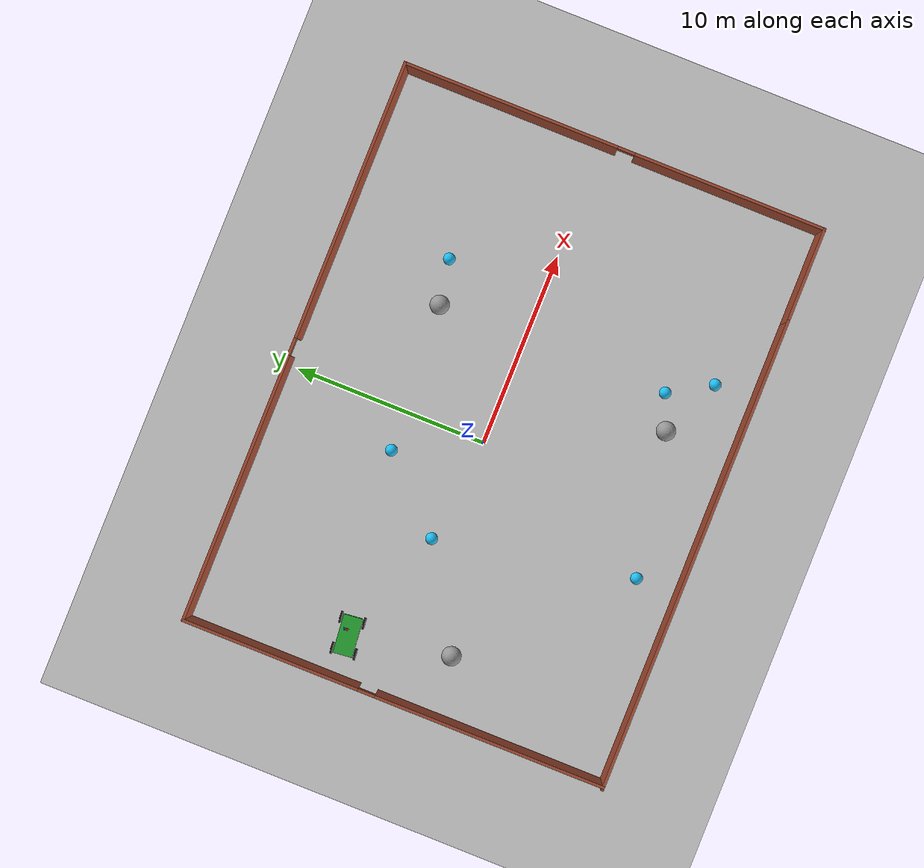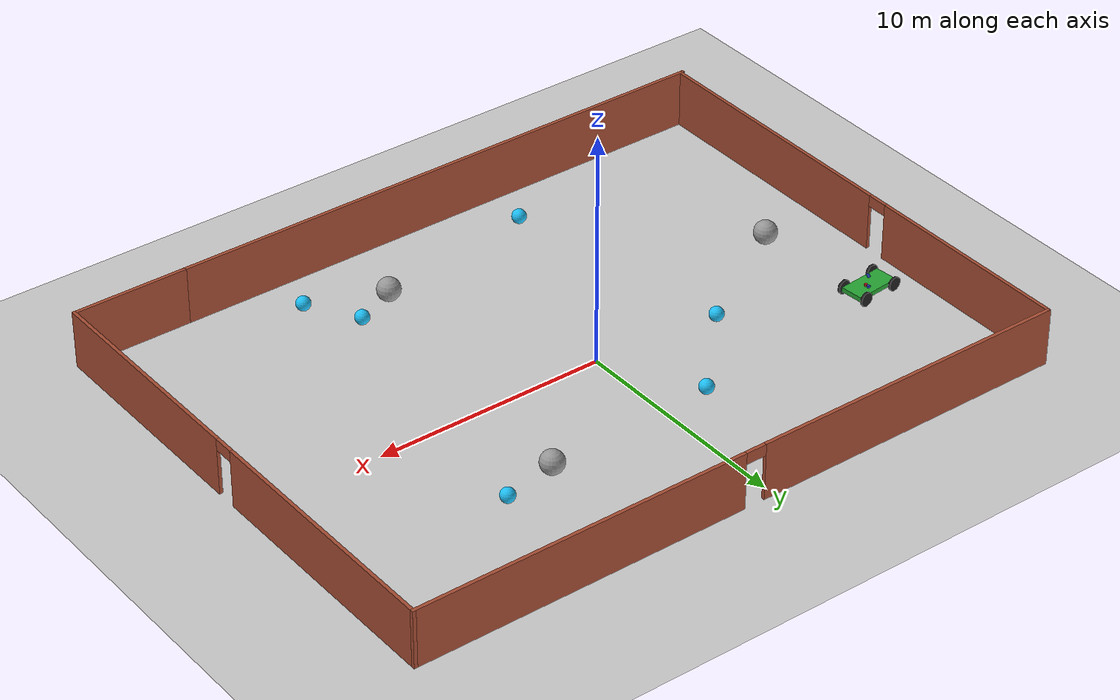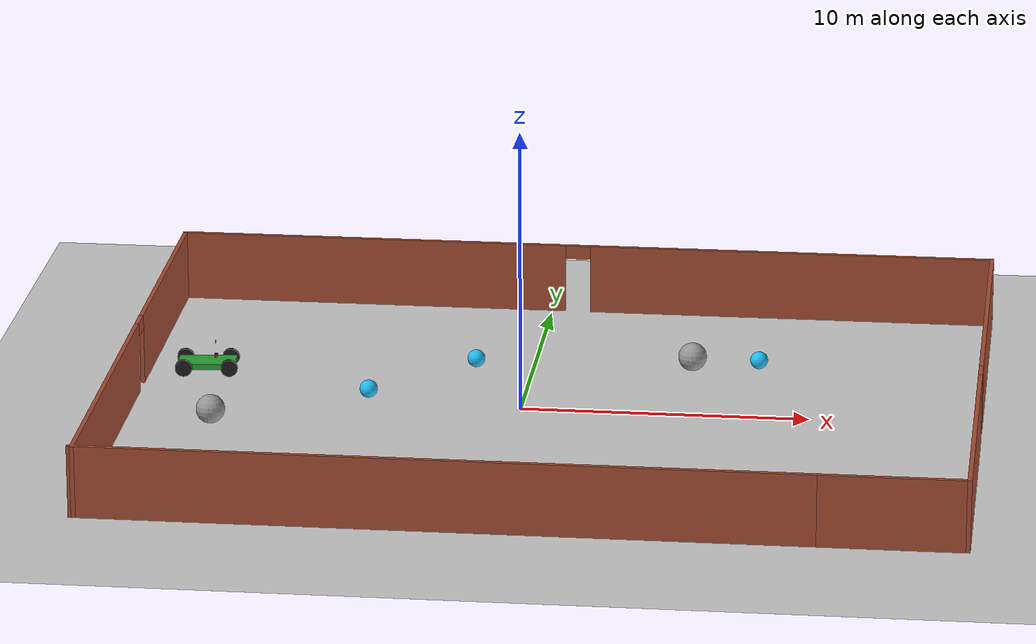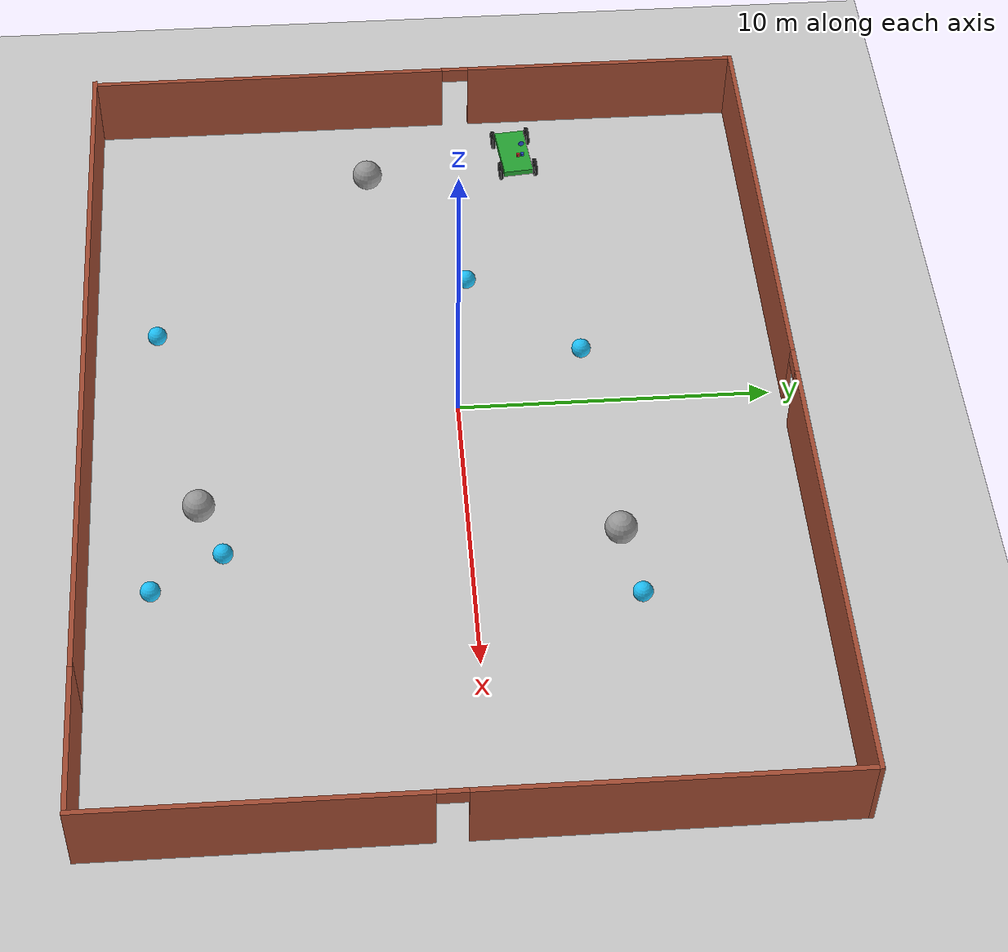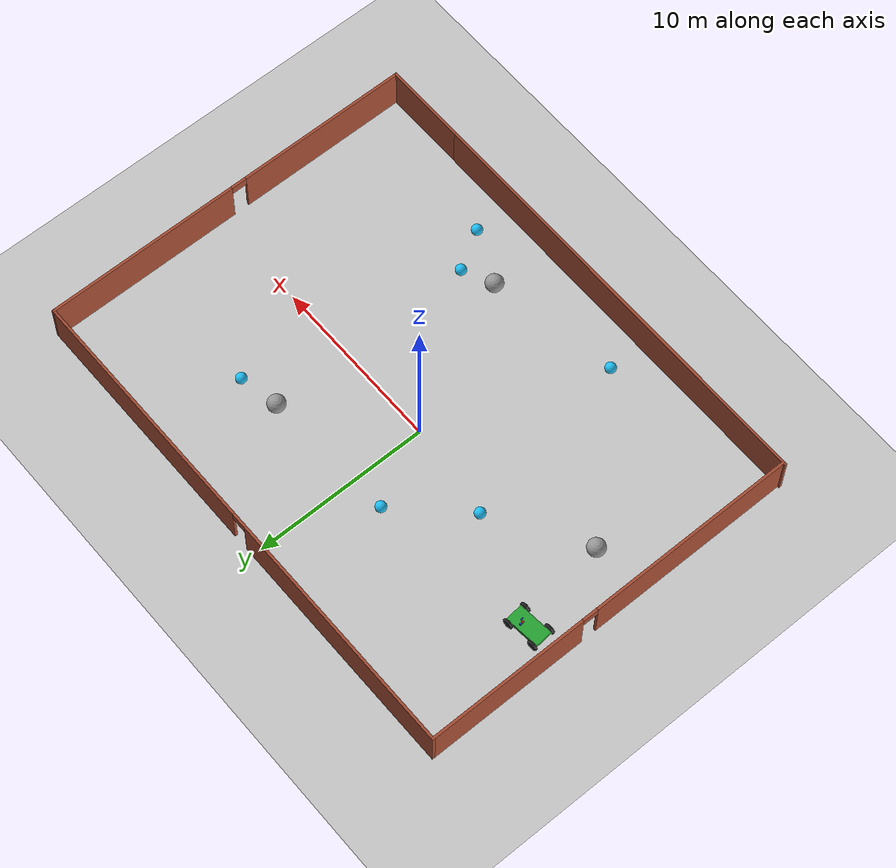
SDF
<sdf version="1.7">
 <world name="default">
  <light name="sun" type="directional">
   <pose>0 0 10 0 -0 0</pose>
   <diffuse>0.8 0.8 0.8 1</diffuse>
   <specular>0.2 0.2 0.2 1</specular>
   <attenuation>
    <range>1000</range>
    <constant>0.9</constant>
    <linear>0.01</linear>
    <quadratic>0.001</quadratic>
   </attenuation>
   <direction>-0.5 0.1 -0.9</direction>
   <spot><inner_angle>0</inner_angle><outer_angle>0</outer_angle><falloff>0</falloff></spot>
  </light>
  <model name="ground_plane">
   <static>1</static>
   <link name="link">
    <collision name="collision">
     <geometry><plane><normal>0 0 1</normal><size>100 100</size></plane></geometry>
     <surface>
      <contact><collide_bitmask>65535</collide_bitmask></contact>
      <friction><ode><mu>100</mu><mu2>50</mu2></ode></friction>
     </surface>
    </collision>
    <visual name="visual">
     <cast_shadows>0</cast_shadows>
     <geometry><plane><normal>0 0 1</normal><size>100 100</size></plane></geometry>
     <material>
      <script><uri>file://media/materials/scripts/gazebo.material</uri><name>Gazebo/Grey</name></script>
     </material>
    </visual>
   </link>
  </model>
  <gravity>0 0 -9.8</gravity>
  <magnetic_field>6e-06 2.3e-05 -4.2e-05</magnetic_field>
  <atmosphere type="adiabatic"/>
  <physics type="ode">
   <max_step_size>0.001</max_step_size>
   <real_time_factor>1</real_time_factor>
   <real_time_update_rate>1000</real_time_update_rate>
  </physics>
  <scene><ambient>0.4 0.4 0.4 1</ambient><background>0.7 0.7 0.7 1</background><shadows>1</shadows></scene>
  <audio><device>default</device></audio>
  <spherical_coordinates>
   <surface_model>EARTH_WGS84</surface_model>
   <latitude_deg>0</latitude_deg>
   <longitude_deg>0</longitude_deg>
   <elevation>0</elevation>
   <heading_deg>0</heading_deg>
  </spherical_coordinates>
  <model name="Untitled">
   <pose>1.1477 -0.611657 0 0 -0 0</pose>
   <link name="Wall_10">
    <pose>14.725 -0 0 0 -0 1.5708</pose>
    <visual name="Wall_10_Visual_0">
     <pose>-6.09601 0 1.25 0 -0 0</pose>
     <geometry><box><size>10.058 0.15 2.5</size></box></geometry>
     <material>
      <script><uri>file://media/materials/scripts/gazebo.material</uri><name>Gazebo/Bricks</name></script>
      <ambient>0.996078 0.47451 0.0196078 1</ambient>
     </material>
     <meta><layer>0</layer></meta>
    </visual>
    <collision name="Wall_10_Collision_0">
     <geometry><box><size>10.058 0.15 2.5</size></box></geometry>
     <pose>-6.09601 0 1.25 0 -0 0</pose>
    </collision>
    <visual name="Wall_10_Visual_1">
     <pose>5.47899 0 1.25 0 -0 0</pose>
     <geometry><box><size>11.292 0.15 2.5</size></box></geometry>
     <material>
      <script><uri>file://media/materials/scripts/gazebo.material</uri><name>Gazebo/Bricks</name></script>
      <ambient>0.996078 0.47451 0.0196078 1</ambient>
     </material>
     <meta><layer>0</layer></meta>
    </visual>
    <collision name="Wall_10_Collision_1">
     <geometry><box><size>11.292 0.15 2.5</size></box></geometry>
     <pose>5.47899 0 1.25 0 -0 0</pose>
    </collision>
    <visual name="Wall_10_Visual_2">
     <pose>-0.617012 0 2.25 0 -0 0</pose>
     <geometry><box><size>0.9 0.15 0.5</size></box></geometry>
     <material>
      <script><uri>file://media/materials/scripts/gazebo.material</uri><name>Gazebo/Bricks</name></script>
      <ambient>0.996078 0.47451 0.0196078 1</ambient>
     </material>
     <meta><layer>0</layer></meta>
    </visual>
    <collision name="Wall_10_Collision_2">
     <geometry><box><size>0.9 0.15 0.5</size></box></geometry>
     <pose>-0.617012 0 2.25 0 -0 0</pose>
    </collision>
   </link>
   <link name="Wall_11">
    <pose>0.049999 11.05 0 0 -0 3.14159</pose>
    <visual name="Wall_11_Visual_0">
     <pose>-7.46209 0 1.25 0 -0 0</pose>
     <geometry><box><size>14.5758 0.15 2.5</size></box></geometry>
     <material>
      <script><uri>file://media/materials/scripts/gazebo.material</uri><name>Gazebo/Bricks</name></script>
      <ambient>0.996078 0.47451 0.0196078 1</ambient>
     </material>
     <meta><layer>0</layer></meta>
    </visual>
    <collision name="Wall_11_Collision_0">
     <geometry><box><size>14.5758 0.15 2.5</size></box></geometry>
     <pose>-7.46209 0 1.25 0 -0 0</pose>
    </collision>
    <visual name="Wall_11_Visual_1">
     <pose>7.73791 0 1.25 0 -0 0</pose>
     <geometry><box><size>14.0242 0.15 2.5</size></box></geometry>
     <material>
      <script><uri>file://media/materials/scripts/gazebo.material</uri><name>Gazebo/Bricks</name></script>
      <ambient>0.996078 0.47451 0.0196078 1</ambient>
     </material>
     <meta><layer>0</layer></meta>
    </visual>
    <collision name="Wall_11_Collision_1">
     <geometry><box><size>14.0242 0.15 2.5</size></box></geometry>
     <pose>7.73791 0 1.25 0 -0 0</pose>
    </collision>
    <visual name="Wall_11_Visual_2">
     <pose>0.275822 0 2.25 0 -0 0</pose>
     <geometry><box><size>0.9 0.15 0.5</size></box></geometry>
     <material>
      <script><uri>file://media/materials/scripts/gazebo.material</uri><name>Gazebo/Bricks</name></script>
      <ambient>0.996078 0.47451 0.0196078 1</ambient>
     </material>
     <meta><layer>0</layer></meta>
    </visual>
    <collision name="Wall_11_Collision_2">
     <geometry><box><size>0.9 0.15 0.5</size></box></geometry>
     <pose>0.275822 0 2.25 0 -0 0</pose>
    </collision>
   </link>
   <link name="Wall_12">
    <pose>-14.625 -0 0 0 -0 -1.5708</pose>
    <visual name="Wall_12_Visual_0">
     <pose>-6.49554 0 1.25 0 -0 0</pose>
     <geometry><box><size>9.25892 0.15 2.5</size></box></geometry>
     <material>
      <script><uri>file://media/materials/scripts/gazebo.material</uri><name>Gazebo/Bricks</name></script>
      <ambient>0.996078 0.47451 0.0196078 1</ambient>
     </material>
     <meta><layer>0</layer></meta>
    </visual>
    <collision name="Wall_12_Collision_0">
     <geometry><box><size>9.25892 0.15 2.5</size></box></geometry>
     <pose>-6.49554 0 1.25 0 -0 0</pose>
    </collision>
    <visual name="Wall_12_Visual_1">
     <pose>5.07946 0 1.25 0 -0 0</pose>
     <geometry><box><size>12.0911 0.15 2.5</size></box></geometry>
     <material>
      <script><uri>file://media/materials/scripts/gazebo.material</uri><name>Gazebo/Bricks</name></script>
      <ambient>0.996078 0.47451 0.0196078 1</ambient>
     </material>
     <meta><layer>0</layer></meta>
    </visual>
    <collision name="Wall_12_Collision_1">
     <geometry><box><size>12.0911 0.15 2.5</size></box></geometry>
     <pose>5.07946 0 1.25 0 -0 0</pose>
    </collision>
    <visual name="Wall_12_Visual_2">
     <pose>-1.41608 0 2.25 0 -0 0</pose>
     <geometry><box><size>0.9 0.15 0.5</size></box></geometry>
     <material>
      <script><uri>file://media/materials/scripts/gazebo.material</uri><name>Gazebo/Bricks</name></script>
      <ambient>0.996078 0.47451 0.0196078 1</ambient>
     </material>
     <meta><layer>0</layer></meta>
    </visual>
    <collision name="Wall_12_Collision_2">
     <geometry><box><size>0.9 0.15 0.5</size></box></geometry>
     <pose>-1.41608 0 2.25 0 -0 0</pose>
    </collision>
   </link>
   <link name="Wall_8">
    <collision name="Wall_8_Collision">
     <geometry><box><size>24.75 0.15 2.5</size></box></geometry>
     <pose>0 0 1.25 0 -0 0</pose>
    </collision>
    <visual name="Wall_8_Visual">
     <pose>0 0 1.25 0 -0 0</pose>
     <geometry><box><size>24.75 0.15 2.5</size></box></geometry>
     <material>
      <script><uri>file://media/materials/scripts/gazebo.material</uri><name>Gazebo/Bricks</name></script>
      <ambient>0.996078 0.47451 0.0196078 1</ambient>
     </material>
     <meta><layer>0</layer></meta>
    </visual>
    <pose>-2.425 -11.05 0 0 -0 0</pose>
   </link>
   <link name="Wall_9">
    <collision name="Wall_9_Collision">
     <geometry><box><size>5 0.15 2.5</size></box></geometry>
     <pose>0 0 1.25 0 -0 0</pose>
    </collision>
    <visual name="Wall_9_Visual">
     <pose>0 0 1.25 0 -0 0</pose>
     <geometry><box><size>5 0.15 2.5</size></box></geometry>
     <material>
      <script><uri>file://media/materials/scripts/gazebo.material</uri><name>Gazebo/Bricks</name></script>
      <ambient>0.996078 0.47451 0.0196078 1</ambient>
     </material>
     <meta><layer>0</layer></meta>
    </visual>
    <pose>12.3 -11.05 0 0 -0 0</pose>
   </link>
   <static>1</static>
  </model>
  <light name="user_point_light_0" type="point">
   <pose>11.5641 7.01778 1 0 -0 0</pose>
   <diffuse>0.5 0.5 0.5 1</diffuse>
   <specular>0.1 0.1 0.1 1</specular>
   <attenuation>
    <range>20</range>
    <constant>0.5</constant>
    <linear>0.01</linear>
    <quadratic>0.001</quadratic>
   </attenuation>
   <cast_shadows>0</cast_shadows>
   <direction>0 0 -1</direction>
   <spot><inner_angle>0</inner_angle><outer_angle>0</outer_angle><falloff>0</falloff></spot>
  </light>
  <light name="user_point_light_2" type="point">
   <pose>12.0204 -0.999285 1 0 -0 0</pose>
   <diffuse>0.5 0.5 0.5 1</diffuse>
   <specular>0.1 0.1 0.1 1</specular>
   <attenuation>
    <range>20</range>
    <constant>0.5</constant>
    <linear>0.01</linear>
    <quadratic>0.001</quadratic>
   </attenuation>
   <cast_shadows>0</cast_shadows>
   <direction>0 0 -1</direction>
   <spot><inner_angle>0</inner_angle><outer_angle>0</outer_angle><falloff>0</falloff></spot>
  </light>
  <light name="user_point_light_4" type="point">
   <pose>4.68877 -1.10747 1 0 -0 0</pose>
   <diffuse>0.5 0.5 0.5 1</diffuse>
   <specular>0.1 0.1 0.1 1</specular>
   <attenuation>
    <range>20</range>
    <constant>0.5</constant>
    <linear>0.01</linear>
    <quadratic>0.001</quadratic>
   </attenuation>
   <cast_shadows>0</cast_shadows>
   <direction>0 0 -1</direction>
   <spot><inner_angle>0</inner_angle><outer_angle>0</outer_angle><falloff>0</falloff></spot>
  </light>
  <light name="user_point_light_10" type="point">
   <pose>-10.2773 -8.82366 1 0 -0 0</pose>
   <diffuse>0.5 0.5 0.5 1</diffuse>
   <specular>0.1 0.1 0.1 1</specular>
   <attenuation>
    <range>20</range>
    <constant>0.5</constant>
    <linear>0.01</linear>
    <quadratic>0.001</quadratic>
   </attenuation>
   <cast_shadows>0</cast_shadows>
   <direction>0 0 -1</direction>
   <spot><inner_angle>0</inner_angle><outer_angle>0</outer_angle><falloff>0</falloff></spot>
  </light>
  <light name="user_point_light_12" type="point">
   <pose>-9.95609 6.83833 1 0 -0 0</pose>
   <diffuse>0.5 0.5 0.5 1</diffuse>
   <specular>0.1 0.1 0.1 1</specular>
   <attenuation>
    <range>20</range>
    <constant>0.5</constant>
    <linear>0.01</linear>
    <quadratic>0.001</quadratic>
   </attenuation>
   <cast_shadows>0</cast_shadows>
   <direction>0 0 -1</direction>
   <spot><inner_angle>0</inner_angle><outer_angle>0</outer_angle><falloff>0</falloff></spot>
  </light>
  <light name="user_point_light_1" type="point">
   <pose>4.64044 0.124915 1 0 -0 0</pose>
   <diffuse>0.5 0.5 0.5 1</diffuse>
   <specular>0.1 0.1 0.1 1</specular>
   <attenuation>
    <range>20</range>
    <constant>0.5</constant>
    <linear>0.01</linear>
    <quadratic>0.001</quadratic>
   </attenuation>
   <cast_shadows>0</cast_shadows>
   <direction>0 0 -1</direction>
   <spot><inner_angle>0</inner_angle><outer_angle>0</outer_angle><falloff>0</falloff></spot>
  </light>
  <light name="user_point_light_3" type="point">
   <pose>-3.39722 7.57799 1 0 -0 0</pose>
   <diffuse>0.5 0.5 0.5 1</diffuse>
   <specular>0.1 0.1 0.1 1</specular>
   <attenuation>
    <range>20</range>
    <constant>0.5</constant>
    <linear>0.01</linear>
    <quadratic>0.001</quadratic>
   </attenuation>
   <cast_shadows>0</cast_shadows>
   <direction>0 0 -1</direction>
   <spot><inner_angle>0</inner_angle><outer_angle>0</outer_angle><falloff>0</falloff></spot>
  </light>
  <light name="user_point_light_5" type="point">
   <pose>-9.91744 7.91782 1 0 -0 0</pose>
   <diffuse>0.5 0.5 0.5 1</diffuse>
   <specular>0.1 0.1 0.1 1</specular>
   <attenuation>
    <range>20</range>
    <constant>0.5</constant>
    <linear>0.01</linear>
    <quadratic>0.001</quadratic>
   </attenuation>
   <cast_shadows>0</cast_shadows>
   <direction>0 0 -1</direction>
   <spot><inner_angle>0</inner_angle><outer_angle>0</outer_angle><falloff>0</falloff></spot>
  </light>
  <light name="user_point_light_6" type="point">
   <pose>-2.9827 0.280549 1 0 -0 0</pose>
   <diffuse>0.5 0.5 0.5 1</diffuse>
   <specular>0.1 0.1 0.1 1</specular>
   <attenuation>
    <range>20</range>
    <constant>0.5</constant>
    <linear>0.01</linear>
    <quadratic>0.001</quadratic>
   </attenuation>
   <cast_shadows>0</cast_shadows>
   <direction>0 0 -1</direction>
   <spot><inner_angle>0</inner_angle><outer_angle>0</outer_angle><falloff>0</falloff></spot>
  </light>
  <light name="user_point_light_7" type="point">
   <pose>-9.88332 0.758617 1 0 -0 0</pose>
   <diffuse>0.5 0.5 0.5 1</diffuse>
   <specular>0.1 0.1 0.1 1</specular>
   <attenuation>
    <range>20</range>
    <constant>0.5</constant>
    <linear>0.01</linear>
    <quadratic>0.001</quadratic>
   </attenuation>
   <cast_shadows>0</cast_shadows>
   <direction>0 0 -1</direction>
   <spot><inner_angle>0</inner_angle><outer_angle>0</outer_angle><falloff>0</falloff></spot>
  </light>
  <light name="user_point_light_8" type="point">
   <pose>-2.12485 -8.13437 1 0 -0 0</pose>
   <diffuse>0.5 0.5 0.5 1</diffuse>
   <specular>0.1 0.1 0.1 1</specular>
   <attenuation>
    <range>20</range>
    <constant>0.5</constant>
    <linear>0.01</linear>
    <quadratic>0.001</quadratic>
   </attenuation>
   <cast_shadows>0</cast_shadows>
   <direction>0 0 -1</direction>
   <spot><inner_angle>0</inner_angle><outer_angle>0</outer_angle><falloff>0</falloff></spot>
  </light>
  <light name="user_point_light_9" type="point">
   <pose>-9.10867 -7.90645 1 0 -0 0</pose>
   <diffuse>0.5 0.5 0.5 1</diffuse>
   <specular>0.1 0.1 0.1 1</specular>
   <attenuation>
    <range>20</range>
    <constant>0.5</constant>
    <linear>0.01</linear>
    <quadratic>0.001</quadratic>
   </attenuation>
   <cast_shadows>0</cast_shadows>
   <direction>0 0 -1</direction>
   <spot><inner_angle>0</inner_angle><outer_angle>0</outer_angle><falloff>0</falloff></spot>
  </light>
  <model name="aws_robomaker_residential_Ball_01">
   <link name="link">
    <inertial>
     <mass>0.12</mass>
     <inertia>
      <ixx>0.030752</ixx>
      <ixy>0</ixy>
      <ixz>0</ixz>
      <iyy>0.030752</iyy>
      <iyz>0</iyz>
      <izz>0.030752</izz>
     </inertia>
    </inertial>
    <collision name="collision">
     <geometry><sphere><radius>0.31</radius></sphere></geometry>
     <surface>
      <friction><ode><mu>0.85</mu><mu2>0.85</mu2></ode></friction>
      <contact><ode><kd>8500</kd><max_vel>5.1</max_vel></ode></contact>
     </surface>
    </collision>
    <visual name="visual">
     <geometry><sphere><radius>0.31</radius></sphere></geometry>
     <material><diffuse>0.12 0.76 0.97 1</diffuse><ambient>0.03 0.21 0.27 1</ambient></material>
     <meta><layer>1</layer></meta>
    </visual>
   </link>
   <pose>7.90822 4.99586 0.31 0 -0 0</pose>
  </model>
  <model name="aws_robomaker_residential_Ball_01_0">
   <link name="link">
    <inertial>
     <mass>0.12</mass>
     <inertia>
      <ixx>0.030752</ixx>
      <ixy>0</ixy>
      <ixz>0</ixz>
      <iyy>0.030752</iyy>
      <iyz>0</iyz>
      <izz>0.030752</izz>
     </inertia>
    </inertial>
    <collision name="collision">
     <geometry><sphere><radius>0.31</radius></sphere></geometry>
     <surface>
      <friction><ode><mu>0.85</mu><mu2>0.85</mu2></ode></friction>
      <contact><ode><kd>8500</kd><max_vel>5.1</max_vel></ode></contact>
     </surface>
    </collision>
    <visual name="visual">
     <geometry><sphere><radius>0.31</radius></sphere></geometry>
     <material><diffuse>0.12 0.76 0.97 1</diffuse><ambient>0.03 0.21 0.27 1</ambient></material>
     <meta><layer>1</layer></meta>
    </visual>
   </link>
   <pose>5.66786 -7.49369 0.31 0 -0 0</pose>
  </model>
  <model name="aws_robomaker_residential_Ball_01_1">
   <link name="link">
    <inertial>
     <mass>0.12</mass>
     <inertia>
      <ixx>0.030752</ixx>
      <ixy>0</ixy>
      <ixz>0</ixz>
      <iyy>0.030752</iyy>
      <iyz>0</iyz>
      <izz>0.030752</izz>
     </inertia>
    </inertial>
    <collision name="collision">
     <geometry><sphere><radius>0.31</radius></sphere></geometry>
     <surface>
      <friction><ode><mu>0.85</mu><mu2>0.85</mu2></ode></friction>
      <contact><ode><kd>8500</kd><max_vel>5.1</max_vel></ode></contact>
     </surface>
    </collision>
    <visual name="visual">
     <geometry><sphere><radius>0.31</radius></sphere></geometry>
     <material><diffuse>0.12 0.76 0.97 1</diffuse><ambient>0.03 0.21 0.27 1</ambient></material>
     <meta><layer>1</layer></meta>
    </visual>
   </link>
   <pose>-2.04036 4.14718 0.31 0 -0 0</pose>
  </model>
  <model name="car">
   <link name="chassis">
    <pose>0 0 0.3 0 -0 0</pose>
    <collision name="collision"><geometry><box><size>2 1 0.2</size></box></geometry></collision>
    <visual name="visual">
     <geometry><box><size>2 1 0.2</size></box></geometry>
     <material>
      <script><uri>file://media/materials/scripts/gazebo.material</uri><name>Gazebo/Green</name></script>
     </material>
    </visual>
    <inertial>
     <inertia><ixx>1</ixx><ixy>0</ixy><ixz>0</ixz><iyy>1</iyy><iyz>0</iyz><izz>1</izz></inertia>
     <mass>1</mass>
    </inertial>
   </link>
   <link name="front_left_wheel">
    <pose>0.8 0.6 0.3 -0 1.5707 1.5707</pose>
    <collision name="collision">
     <geometry><cylinder><radius>0.3</radius><length>0.1</length></cylinder></geometry>
    </collision>
    <visual name="visual">
     <geometry><cylinder><radius>0.3</radius><length>0.1</length></cylinder></geometry>
     <material>
      <script><uri>file://media/materials/scripts/gazebo.material</uri><name>Gazebo/Black</name></script>
     </material>
    </visual>
    <inertial>
     <inertia><ixx>1</ixx><ixy>0</ixy><ixz>0</ixz><iyy>1</iyy><iyz>0</iyz><izz>1</izz></inertia>
     <mass>1</mass>
    </inertial>
   </link>
   <link name="front_right_wheel">
    <pose>0.8 -0.6 0.3 -0 1.5707 1.5707</pose>
    <collision name="collision">
     <geometry><cylinder><radius>0.3</radius><length>0.1</length></cylinder></geometry>
    </collision>
    <visual name="visual">
     <geometry><cylinder><radius>0.3</radius><length>0.1</length></cylinder></geometry>
     <material>
      <script><uri>file://media/materials/scripts/gazebo.material</uri><name>Gazebo/Black</name></script>
     </material>
    </visual>
    <inertial>
     <inertia><ixx>1</ixx><ixy>0</ixy><ixz>0</ixz><iyy>1</iyy><iyz>0</iyz><izz>1</izz></inertia>
     <mass>1</mass>
    </inertial>
   </link>
   <link name="back_right_wheel">
    <pose>-0.8 -0.6 0.3 -0 1.5707 1.5707</pose>
    <collision name="collision">
     <geometry><cylinder><radius>0.3</radius><length>0.1</length></cylinder></geometry>
    </collision>
    <visual name="visual">
     <geometry><cylinder><radius>0.3</radius><length>0.1</length></cylinder></geometry>
     <material>
      <script><uri>file://media/materials/scripts/gazebo.material</uri><name>Gazebo/Black</name></script>
     </material>
    </visual>
    <inertial>
     <inertia><ixx>1</ixx><ixy>0</ixy><ixz>0</ixz><iyy>1</iyy><iyz>0</iyz><izz>1</izz></inertia>
     <mass>1</mass>
    </inertial>
   </link>
   <link name="back_left_wheel">
    <pose>-0.8 0.6 0.3 -0 1.5707 1.5707</pose>
    <collision name="collision">
     <geometry><cylinder><radius>0.3</radius><length>0.1</length></cylinder></geometry>
    </collision>
    <visual name="visual">
     <geometry><cylinder><radius>0.3</radius><length>0.1</length></cylinder></geometry>
     <material>
      <script><uri>file://media/materials/scripts/gazebo.material</uri><name>Gazebo/Black</name></script>
     </material>
    </visual>
    <inertial>
     <inertia><ixx>1</ixx><ixy>0</ixy><ixz>0</ixz><iyy>1</iyy><iyz>0</iyz><izz>1</izz></inertia>
     <mass>1</mass>
    </inertial>
   </link>
   <link name="gas_pedal">
    <pose>0.3 0.1 0.5 0 -0 0</pose>
    <collision name="collision"><geometry><box><size>0.1 0.1 0.1</size></box></geometry></collision>
    <visual name="visual">
     <geometry><box><size>0.1 0.1 0.1</size></box></geometry>
     <material>
      <script><uri>file://media/materials/scripts/gazebo.material</uri><name>Gazebo/Red</name></script>
     </material>
    </visual>
    <inertial>
     <inertia><ixx>1</ixx><ixy>0</ixy><ixz>0</ixz><iyy>1</iyy><iyz>0</iyz><izz>1</izz></inertia>
     <mass>1</mass>
    </inertial>
   </link>
   <link name="brake_pedal">
    <pose>0.3 0.25 0.5 0 -0 0</pose>
    <collision name="collision"><geometry><box><size>0.1 0.1 0.1</size></box></geometry></collision>
    <visual name="visual">
     <geometry><box><size>0.1 0.1 0.1</size></box></geometry>
     <material>
      <script><uri>file://media/materials/scripts/gazebo.material</uri><name>Gazebo/Blue</name></script>
     </material>
    </visual>
    <inertial>
     <inertia><ixx>1</ixx><ixy>0</ixy><ixz>0</ixz><iyy>1</iyy><iyz>0</iyz><izz>1</izz></inertia>
     <mass>1</mass>
    </inertial>
   </link>
   <link name="steering_wheel">
    <pose>0.3 0.2 1 0 1.5707 0</pose>
    <collision name="collision">
     <geometry><cylinder><radius>0.1</radius><length>0.01</length></cylinder></geometry>
    </collision>
    <visual name="visual">
     <geometry><cylinder><radius>0.1</radius><length>0.01</length></cylinder></geometry>
     <material>
      <script><uri>file://media/materials/scripts/gazebo.material</uri><name>Gazebo/Blue</name></script>
     </material>
    </visual>
    <inertial>
     <inertia><ixx>1</ixx><ixy>0</ixy><ixz>0</ixz><iyy>1</iyy><iyz>0</iyz><izz>1</izz></inertia>
     <mass>1</mass>
    </inertial>
   </link>
   <joint name="gas_joint" type="prismatic">
    <parent>chassis</parent>
    <child>gas_pedal</child>
    <axis>
     <xyz expressed_in="__model__">1 0 0</xyz>
     <limit><lower>0</lower><upper>0.2</upper></limit>
     <dynamics><spring_reference>0</spring_reference><spring_stiffness>0</spring_stiffness></dynamics>
    </axis>
   </joint>
   <joint name="brake_joint" type="prismatic">
    <parent>chassis</parent>
    <child>brake_pedal</child>
    <axis>
     <xyz expressed_in="__model__">1 0 0</xyz>
     <limit><lower>0</lower><upper>0.2</upper></limit>
     <dynamics><spring_reference>0</spring_reference><spring_stiffness>0</spring_stiffness></dynamics>
    </axis>
   </joint>
   <joint name="steering_joint" type="revolute">
    <parent>chassis</parent>
    <child>steering_wheel</child>
    <axis>
     <xyz expressed_in="__model__">1 0 0</xyz>
     <limit><lower>-7.853</lower><upper>7.853</upper></limit>
     <dynamics><spring_reference>0</spring_reference><spring_stiffness>0</spring_stiffness></dynamics>
    </axis>
   </joint>
   <joint name="front_left_joint" type="revolute2">
    <parent>chassis</parent>
    <child>front_left_wheel</child>
    <axis>
     <xyz expressed_in="__model__">0 0 1</xyz>
     <limit><lower>-6.19563e-07</lower><upper>-6.19563e-07</upper></limit>
     <dynamics><spring_reference>0</spring_reference><spring_stiffness>0</spring_stiffness></dynamics>
    </axis>
    <axis2>
     <xyz expressed_in="__model__">0 1 0</xyz>
     <limit><upper>1e+16</upper><lower>-1e+16</lower></limit>
     <dynamics><spring_reference>0</spring_reference><spring_stiffness>0</spring_stiffness></dynamics>
    </axis2>
    <physics><ode><limit><cfm>0</cfm><erp>0.9</erp></limit></ode></physics>
   </joint>
   <joint name="front_right_joint" type="revolute2">
    <parent>chassis</parent>
    <child>front_right_wheel</child>
    <axis>
     <xyz expressed_in="__model__">0 0 1</xyz>
     <limit><lower>-6.19563e-07</lower><upper>-6.19563e-07</upper></limit>
     <dynamics><spring_reference>0</spring_reference><spring_stiffness>0</spring_stiffness></dynamics>
    </axis>
    <axis2>
     <xyz expressed_in="__model__">0 1 0</xyz>
     <limit><upper>1e+16</upper><lower>-1e+16</lower></limit>
     <dynamics><spring_reference>0</spring_reference><spring_stiffness>0</spring_stiffness></dynamics>
    </axis2>
    <physics><ode><limit><cfm>0</cfm><erp>0.9</erp></limit></ode></physics>
   </joint>
   <joint name="back_right_joint" type="revolute2">
    <parent>chassis</parent>
    <child>back_right_wheel</child>
    <axis>
     <xyz expressed_in="__model__">0 0 1</xyz>
     <limit><lower>0</lower><upper>0</upper></limit>
     <dynamics><spring_reference>0</spring_reference><spring_stiffness>0</spring_stiffness></dynamics>
    </axis>
    <axis2>
     <xyz expressed_in="__model__">0 1 0</xyz>
     <limit><upper>1e+16</upper><lower>-1e+16</lower></limit>
     <dynamics><spring_reference>0</spring_reference><spring_stiffness>0</spring_stiffness></dynamics>
    </axis2>
    <physics><ode><limit><cfm>0</cfm><erp>0.9</erp></limit></ode></physics>
   </joint>
   <joint name="back_left_joint" type="revolute2">
    <parent>chassis</parent>
    <child>back_left_wheel</child>
    <axis>
     <xyz expressed_in="__model__">0 0 1</xyz>
     <limit><lower>0</lower><upper>0</upper></limit>
     <dynamics><spring_reference>0</spring_reference><spring_stiffness>0</spring_stiffness></dynamics>
    </axis>
    <axis2>
     <xyz expressed_in="__model__">0 1 0</xyz>
     <limit><upper>1e+16</upper><lower>-1e+16</lower></limit>
     <dynamics><spring_reference>0</spring_reference><spring_stiffness>0</spring_stiffness></dynamics>
    </axis2>
    <physics><ode><limit><cfm>0</cfm><erp>0.9</erp></limit></ode></physics>
   </joint>
   <plugin name="vehicle" filename="libVehiclePlugin.so">
    <front_left>front_left_joint</front_left>
    <front_right>front_right_joint</front_right>
    <back_left>back_left_joint</back_left>
    <back_right>back_right_joint</back_right>
    <gas>gas_joint</gas>
    <brake>brake_joint</brake>
    <steering>steering_joint</steering>
    <front_power>10</front_power>
    <rear_power>10</rear_power>
    <tire_angle_range>0.5</tire_angle_range>
    <max_speed>10</max_speed>
    <aero_load>0.1</aero_load>
   </plugin>
   <pose>-11.4276 2.73694 1e-05 -4e-06 2e-06 0.096721</pose>
  </model>
  <model name="aws_robomaker_residential_Ball_01_2">
   <link name="link">
    <inertial>
     <mass>0.12</mass>
     <inertia>
      <ixx>0.030752</ixx>
      <ixy>0</ixy>
      <ixz>0</ixz>
      <iyy>0.030752</iyy>
      <iyz>0</iyz>
      <izz>0.030752</izz>
     </inertia>
    </inertial>
    <collision name="collision">
     <geometry><sphere><radius>0.31</radius></sphere></geometry>
     <surface>
      <friction><ode><mu>0.85</mu><mu2>0.85</mu2></ode></friction>
      <contact><ode><kd>8500</kd><max_vel>5.1</max_vel></ode></contact>
     </surface>
    </collision>
    <visual name="visual">
     <geometry><sphere><radius>0.31</radius></sphere></geometry>
     <material><diffuse>0.12 0.76 0.97 1</diffuse><ambient>0.03 0.21 0.27 1</ambient></material>
     <meta><layer>1</layer></meta>
    </visual>
   </link>
   <pose>-3.46718 -9.57822 0.31 0 -0 0</pose>
  </model>
  <model name="aws_robomaker_residential_Ball_01_3">
   <link name="link">
    <inertial>
     <mass>0.12</mass>
     <inertia>
      <ixx>0.030752</ixx>
      <ixy>0</ixy>
      <ixz>0</ixz>
      <iyy>0.030752</iyy>
      <iyz>0</iyz>
      <izz>0.030752</izz>
     </inertia>
    </inertial>
    <collision name="collision">
     <geometry><sphere><radius>0.31</radius></sphere></geometry>
     <surface>
      <friction><ode><mu>0.85</mu><mu2>0.85</mu2></ode></friction>
      <contact><ode><kd>8500</kd><max_vel>5.1</max_vel></ode></contact>
     </surface>
    </collision>
    <visual name="visual">
     <geometry><sphere><radius>0.31</radius></sphere></geometry>
     <material><diffuse>0.12 0.76 0.97 1</diffuse><ambient>0.03 0.21 0.27 1</ambient></material>
     <meta><layer>1</layer></meta>
    </visual>
   </link>
   <pose>6.9584 -9.66264 0.31 0 -0 0</pose>
  </model>
  <model name="aws_robomaker_residential_Ball_01_4">
   <link name="link">
    <inertial>
     <mass>0.12</mass>
     <inertia>
      <ixx>0.030752</ixx>
      <ixy>0</ixy>
      <ixz>0</ixz>
      <iyy>0.030752</iyy>
      <iyz>0</iyz>
      <izz>0.030752</izz>
     </inertia>
    </inertial>
    <collision name="collision">
     <geometry><sphere><radius>0.31</radius></sphere></geometry>
     <surface>
      <friction><ode><mu>0.85</mu><mu2>0.85</mu2></ode></friction>
      <contact><ode><kd>8500</kd><max_vel>5.1</max_vel></ode></contact>
     </surface>
    </collision>
    <visual name="visual">
     <geometry><sphere><radius>0.31</radius></sphere></geometry>
     <material><diffuse>0.12 0.76 0.97 1</diffuse><ambient>0.03 0.21 0.27 1</ambient></material>
     <meta><layer>1</layer></meta>
    </visual>
   </link>
   <pose>-5.39752 0.65014 0.31 0 -0 0</pose>
  </model>
  <model name="unit_sphere">
   <pose>3.89909 -8.22078 0.5 0 -0 0</pose>
   <link name="link">
    <inertial>
     <mass>1</mass>
     <inertia><ixx>0.1</ixx><ixy>0</ixy><ixz>0</ixz><iyy>0.1</iyy><iyz>0</iyz><izz>0.1</izz></inertia>
    </inertial>
    <collision name="collision"><geometry><sphere><radius>0.5</radius></sphere></geometry></collision>
    <visual name="visual">
     <geometry><sphere><radius>0.5</radius></sphere></geometry>
     <material>
      <script><name>Gazebo/Grey</name><uri>file://media/materials/scripts/gazebo.material</uri></script>
     </material>
    </visual>
   </link>
  </model>
  <model name="unit_sphere_0">
   <pose>-10.4555 -2.42513 0.5 0 -0 0</pose>
   <link name="link">
    <inertial>
     <mass>1</mass>
     <inertia><ixx>0.1</ixx><ixy>0</ixy><ixz>0</ixz><iyy>0.1</iyy><iyz>0</iyz><izz>0.1</izz></inertia>
    </inertial>
    <collision name="collision"><geometry><sphere><radius>0.5</radius></sphere></geometry></collision>
    <visual name="visual">
     <geometry><sphere><radius>0.5</radius></sphere></geometry>
     <material>
      <script><name>Gazebo/Grey</name><uri>file://media/materials/scripts/gazebo.material</uri></script>
     </material>
    </visual>
   </link>
  </model>
  <model name="unit_sphere_1">
   <pose>5.5835 4.58825 0.5 0 -0 0</pose>
   <link name="link">
    <inertial>
     <mass>1</mass>
     <inertia><ixx>0.1</ixx><ixy>0</ixy><ixz>0</ixz><iyy>0.1</iyy><iyz>0</iyz><izz>0.1</izz></inertia>
    </inertial>
    <collision name="collision"><geometry><sphere><radius>0.5</radius></sphere></geometry></collision>
    <visual name="visual">
     <geometry><sphere><radius>0.5</radius></sphere></geometry>
     <material>
      <script><name>Gazebo/Grey</name><uri>file://media/materials/scripts/gazebo.material</uri></script>
     </material>
    </visual>
   </link>
  </model>
 </world>
</sdf>
